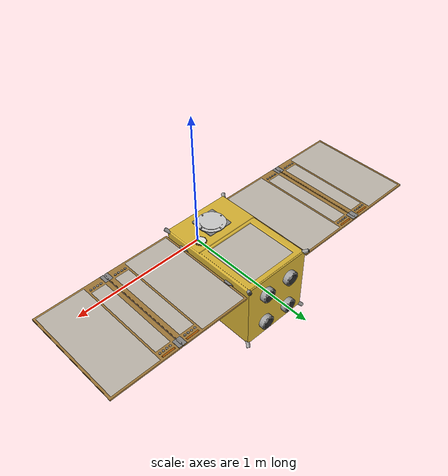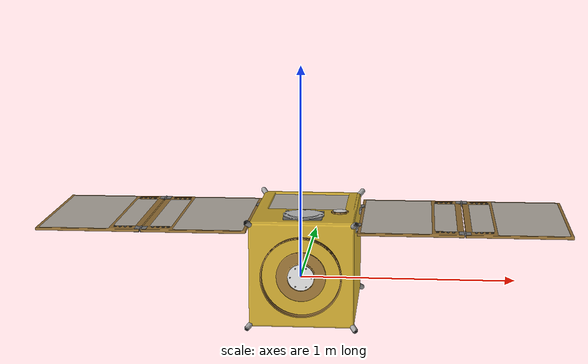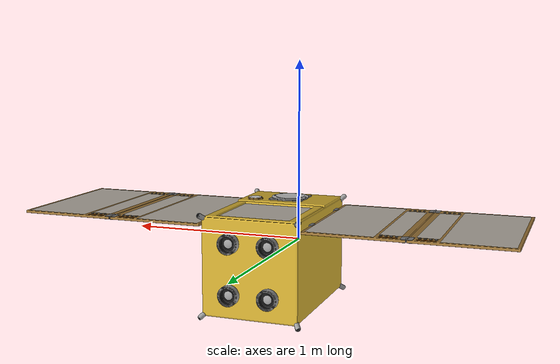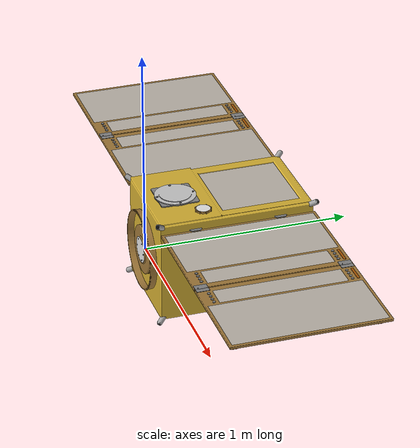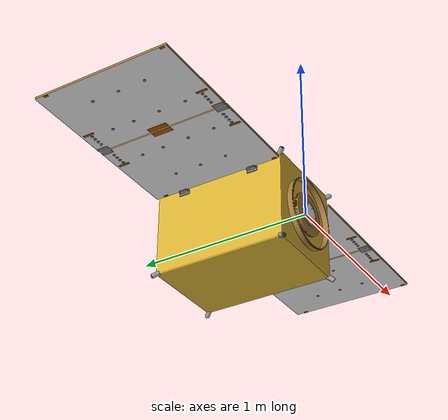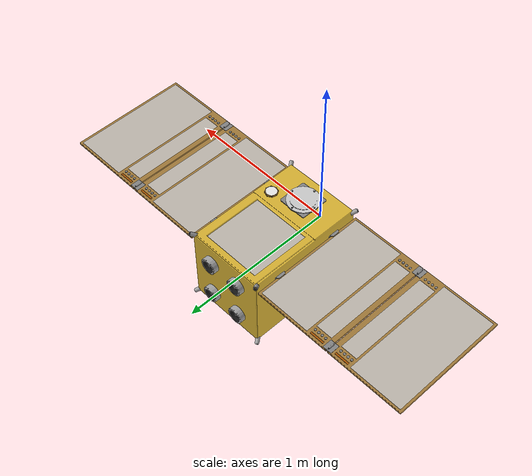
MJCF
<mujoco model="Sat">
  <default>
    <default class="visual">
      <geom group="2" type="mesh" contype="0" conaffinity="0"/>
    </default>
    <default class="collision">
      <geom group="3" type="mesh"/>
    </default>
  </default>
  <asset>
    <material name="Aluminium" specular="0.5" shininess="0.542231445" rgba="0.523579 0.523579 0.523579 1.000000"/>
    <material name="AluminiumAnodised" specular="0.5" shininess="0.542231445" rgba="0.636359 0.479112 0.229033 1.000000"/>
    <material name="AluminiumBlack" specular="0.5" shininess="0.542231445" rgba="0.086906 0.086906 0.086906 1.000000"/>
    <material name="AluminiumBlack.001" specular="0.5" shininess="0.542231445" rgba="0.086906 0.086906 0.086906 1.000000"/>
    <material name="AluminiumBlack.002" specular="0.5" shininess="0.542231445" rgba="0.086906 0.086906 0.086906 1.000000"/>
    <material name="AluminiumBlack.003" specular="0.5" shininess="0.542231445" rgba="0.086906 0.086906 0.086906 1.000000"/>
    <material name="AluminiumWhite" specular="0.5" shininess="0.386613068" rgba="0.850000 0.850000 0.850000 1.000000"/>
    <material name="Foil.Gold_2" specular="0.5" shininess="0.793881104" rgba="0.665500 0.337149 0.010959 1.000000"/>
    <texture type="2d" name="Foil_Gold_Color" file="Foil_Gold_Color.png"/>
    <material name="Foil.Gold_3" texture="Foil_Gold_Color" specular="0.5" shininess="0.25"/>
    <material name="Metal_1" specular="0.5" shininess="0.49" rgba="0.642848 0.642848 0.642848 1.000000"/>
    <material name="Metal_1.001" specular="0.5" shininess="0.49" rgba="0.642848 0.642848 0.642848 1.000000"/>
    <material name="Metal_1.002" specular="0.5" shininess="0.49" rgba="0.642848 0.642848 0.642848 1.000000"/>
    <material name="Metal_1.003" specular="0.5" shininess="0.49" rgba="0.642848 0.642848 0.642848 1.000000"/>
    <material name="PlasticWhite" specular="0.5" shininess="0.25" rgba="0.800000 0.800000 0.800000 1.000000"/>
    <texture type="2d" name="SolarCell.002_albedo" file="SolarCell.002_albedo.png"/>
    <material name="SolarCells_2" texture="SolarCell.002_albedo" specular="0.5" shininess="0.25"/>
    <texture type="2d" name="WPC_Diffuse" file="WPC_Diffuse.png"/>
    <material name="WhitePowderCoating" texture="WPC_Diffuse" specular="0.5" shininess="0.25"/>
    <mesh file="Sat_0.obj"/>
    <mesh file="Sat_1.obj"/>
    <mesh file="Sat_2.obj"/>
    <mesh file="Sat_3.obj"/>
    <mesh file="Sat_4.obj"/>
    <mesh file="Sat_5.obj"/>
    <mesh file="Sat_7.obj"/>
    <mesh file="Sat_8.obj"/>
    <mesh file="Sat_9.obj"/>
    <mesh file="Sat_10.obj"/>
    <mesh file="Sat_11.obj"/>
    <mesh file="Sat_12.obj"/>
    <mesh file="Sat_13.obj"/>
    <mesh file="Sat_14.obj"/>
    <mesh file="Sat_15.obj"/>
  </asset>
  <worldbody>
    <body name="Sat">
      <geom mesh="Sat_0" material="AluminiumBlack.003" class="visual"/>
      <geom mesh="Sat_1" material="Metal_1.003" class="visual"/>
      <geom mesh="Sat_2" material="AluminiumBlack.002" class="visual"/>
      <geom mesh="Sat_3" material="Metal_1.002" class="visual"/>
      <geom mesh="Sat_4" material="AluminiumBlack.001" class="visual"/>
      <geom mesh="Sat_5" material="Metal_1.001" class="visual"/>
      <geom mesh="Sat_7" material="Foil.Gold_2" class="visual"/>
      <geom mesh="Sat_8" material="SolarCells_2" class="visual"/>
      <geom mesh="Sat_9" material="AluminiumBlack" class="visual"/>
      <geom mesh="Sat_10" material="Metal_1" class="visual"/>
      <geom mesh="Sat_11" material="Foil.Gold_3" class="visual"/>
      <geom mesh="Sat_12" material="WhitePowderCoating" class="visual"/>
      <geom mesh="Sat_13" material="AluminiumAnodised" class="visual"/>
      <geom mesh="Sat_14" material="PlasticWhite" class="visual"/>
      <geom mesh="Sat_15" material="Aluminium" class="visual"/>
      <geom mesh="Sat_0" class="collision"/>
      <geom mesh="Sat_1" class="collision"/>
      <geom mesh="Sat_2" class="collision"/>
      <geom mesh="Sat_3" class="collision"/>
      <geom mesh="Sat_4" class="collision"/>
      <geom mesh="Sat_5" class="collision"/>
      <geom mesh="Sat_7" class="collision"/>
      <geom mesh="Sat_8" class="collision"/>
      <geom mesh="Sat_9" class="collision"/>
      <geom mesh="Sat_10" class="collision"/>
      <geom mesh="Sat_11" class="collision"/>
      <geom mesh="Sat_12" class="collision"/>
      <geom mesh="Sat_13" class="collision"/>
      <geom mesh="Sat_14" class="collision"/>
      <geom mesh="Sat_15" class="collision"/>
    </body>
  </worldbody>
</mujoco>
